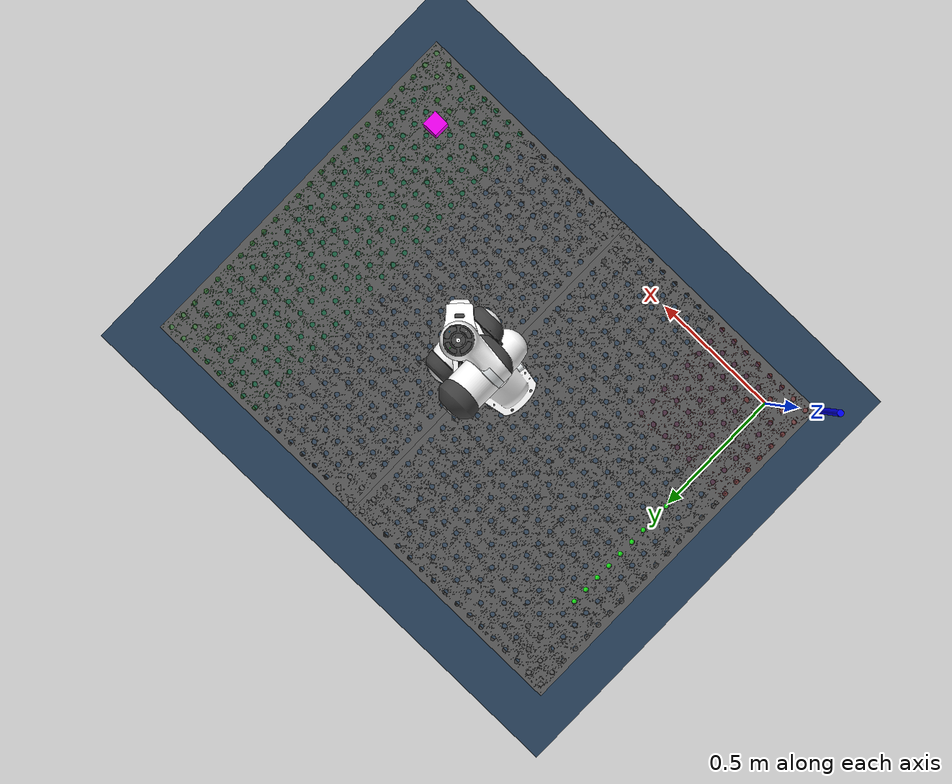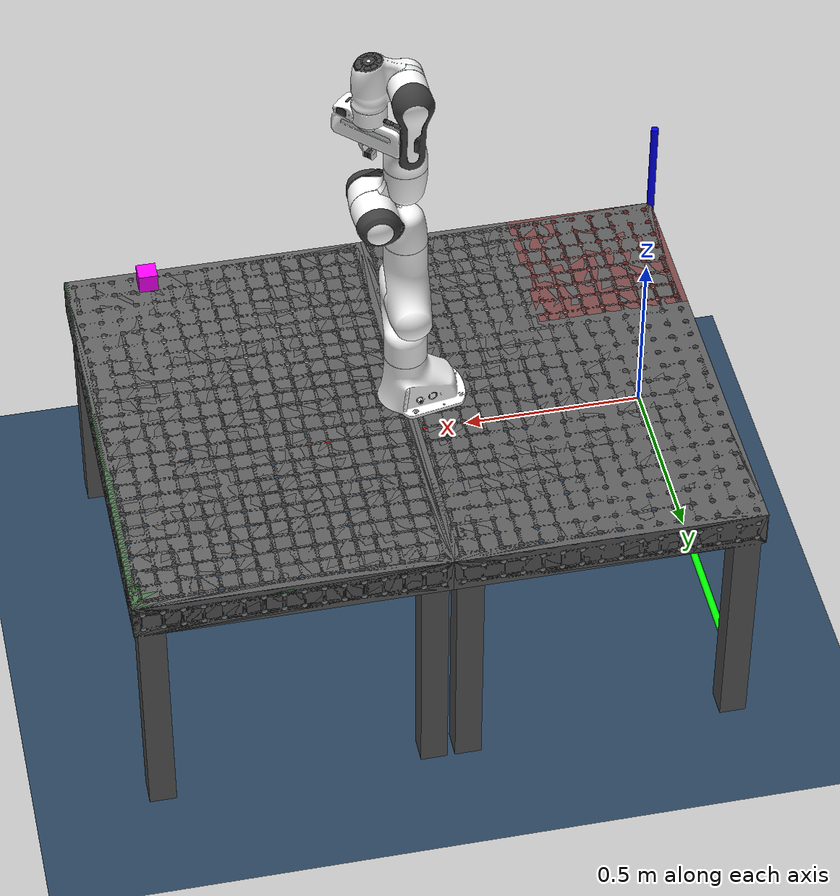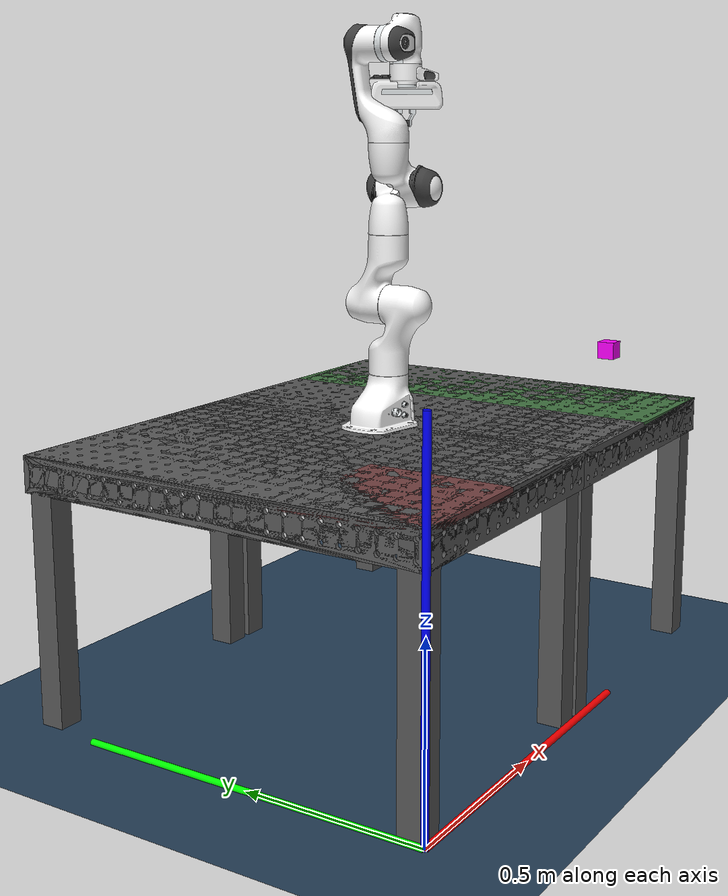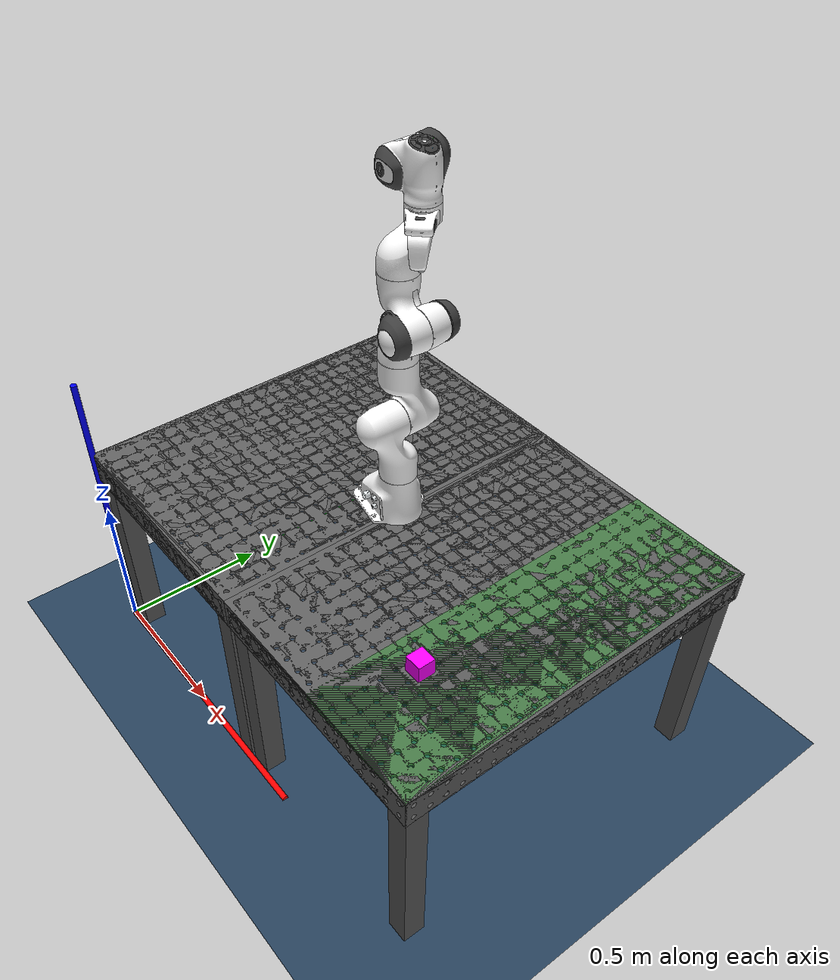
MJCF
<mujoco model="scene">

    <compiler angle="radian" autolimits="true" />
    <option timestep="0.002" integrator="implicitfast" solver="PGS" gravity="0 0 -9.82"
            cone="elliptic">
    </option>

    <include file="../franka_emika_panda/panda.xml" />

    <statistic center="0.3 0 0.3" extent="0.8" meansize="0.08" />

    <visual>
        <headlight diffuse="0.6 0.6 0.6" ambient="0.1 0.1 0.1" specular="0 0 0" />
        <rgba haze="0.15 0.25 0.35 1" />
        <global azimuth="120" elevation="-20" />
    </visual>

    <asset>
        <texture type="skybox" builtin="gradient" rgb1="0.3 0.5 0.7" rgb2="0 0 0" width="512"
                 height="3072" />
        <texture type="2d" name="groundplane" builtin="checker" mark="edge" rgb1="0.2 0.3 0.4"
                 rgb2="0.1 0.2 0.3" markrgb="0.8 0.8 0.8" width="300" height="300" />
        <material name="groundplane" texture="groundplane" texuniform="true" texrepeat="5 5"
                  reflectance="0.2" />

        <!--meshes-->
        <mesh name ="table" file="../table/sigmund_table.stl" scale= "1 1 1"/>
    </asset>

    <worldbody>
        <light pos="0 0 1.5" dir="0 0 -1" directional="true" />
		<geom name="floor" size="0 0 0.05" type="plane" material="groundplane" />
		<geom name="x-aixs" group="2" type="cylinder" contype="0" conaffinity="0"
			fromto="0 0 0 1 0 0" size="0.01" rgba="1 0 0 1" />
		<geom name="y-aixs" group="2" type="cylinder" contype="0" conaffinity="0"
			fromto="0 0 0 0 1 0" size="0.01" rgba="0 1 0 1" />
		<geom name="z-aixs" group="2" type="cylinder" contype="0" conaffinity="0"
			fromto="0 0 0 0 0 1" size="0.01" rgba="0 0 1 1" />

		<camera name="cam" pos="1.0 0.6 2.0" xyaxes="0 -1 0 1 0 0.5" mode="fixed" />

		<body name="mocap" mocap="true" pos="0.8 0.6 0.74">
			<geom name="mocap" type="sphere" size="0.000001"/>
		</body>

		<body name="Box" pos="1.4 0.2 0.9" quat="1 0 0 0">
			<joint name="Box" type="free" />
			<geom name="Box" type="box" size="0.025 0.025 0.025" rgba="1 0 1 1" condim="6"/>
		</body>

		<!--Zones-->
		<body name="zone_pickup" pos="1.4 0.6 0.73" quat="1 0 0 0">
			<geom name="zone_pickup" type="box" size="0.2 0.6 0.01" rgba="0 1 0 0.1" contype="0" conaffinity="0"/>
		</body>
		<body name="zone_drop" pos="0.2 0.2 0.73" quat="1 0 0 0">
			<geom name="zone_drop" type="box" size="0.2 0.2 0.01" rgba="1 0 0 0.1" contype="0" conaffinity="0"/>
		</body>

        <!--table -->
		<body name = "table1" euler="0 0 0" pos= "0.8 0 0.74" >
		  <geom name = "table1" type="mesh" mesh="table" group="2" rgba="0.35 0.35 0.35 1" mass="0" contype="0" conaffinity="0"/>
		</body>
		<body name = "table2" euler="0 0 0" pos= "1.6 0 0.74" >
		  <geom name = "table2" type="mesh" mesh="table" group="2" rgba="0.35 0.35 0.35 1" mass="0" contype="0" conaffinity="0"/>
		</body>

		<body name="simple_table" pos="0.8 0.6 0.69" quat="1 0 0 0">
			<geom name="simple_table" type="box" size="0.8 0.6 0.05" rgba="0.5 0.5 0.5 0.1"/>
		</body>
    </worldbody>

</mujoco>

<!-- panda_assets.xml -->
<mujocoinclude>

    <!-- 手爪相关网格 -->
    <mesh file="../franka_emika_panda/assets/finger_0.obj" />
    <mesh file="../franka_emika_panda/assets/finger_1.obj" />
    <mesh file="../franka_emika_panda/assets/hand_0.obj" />
    <mesh file="../franka_emika_panda/assets/hand_1.obj" />
    <mesh file="../franka_emika_panda/assets/hand_2.obj" />
    <mesh file="../franka_emika_panda/assets/hand_3.obj" />
    <mesh file="../franka_emika_panda/assets/hand_4.obj" />

    <!-- panda 链接体 -->
    <mesh file="../franka_emika_panda/assets/link0_0.obj" />
    <mesh file="../franka_emika_panda/assets/link0_1.obj" />
    <mesh file="../franka_emika_panda/assets/link0_2.obj" />
    <mesh file="../franka_emika_panda/assets/link0_3.obj" />
    <mesh file="../franka_emika_panda/assets/link0_4.obj" />
    <mesh file="../franka_emika_panda/assets/link0_5.obj" />
    <mesh file="../franka_emika_panda/assets/link0_7.obj" />
    <mesh file="../franka_emika_panda/assets/link0_8.obj" />
    <mesh file="../franka_emika_panda/assets/link0_9.obj" />
    <mesh file="../franka_emika_panda/assets/link0_10.obj" />
    <mesh file="../franka_emika_panda/assets/link0_11.obj" />

    <mesh file="../franka_emika_panda/assets/link1.obj" />
    <mesh file="../franka_emika_panda/assets/link2.obj" />

    <mesh file="../franka_emika_panda/assets/link3_0.obj" />
    <mesh file="../franka_emika_panda/assets/link3_1.obj" />
    <mesh file="../franka_emika_panda/assets/link3_2.obj" />
    <mesh file="../franka_emika_panda/assets/link3_3.obj" />

    <mesh file="../franka_emika_panda/assets/link4_0.obj" />
    <mesh file="../franka_emika_panda/assets/link4_1.obj" />
    <mesh file="../franka_emika_panda/assets/link4_2.obj" />
    <mesh file="../franka_emika_panda/assets/link4_3.obj" />

    <mesh file="../franka_emika_panda/assets/link5_0.obj" />
    <mesh file="../franka_emika_panda/assets/link5_1.obj" />
    <mesh file="../franka_emika_panda/assets/link5_2.obj" />
    <mesh file="../franka_emika_panda/assets/link5_collision_0.obj" />
    <mesh file="../franka_emika_panda/assets/link5_collision_1.obj" />
    <mesh file="../franka_emika_panda/assets/link5_collision_2.obj" />

    <mesh file="../franka_emika_panda/assets/link6_0.obj" />
    <mesh file="../franka_emika_panda/assets/link6_1.obj" />
    <mesh file="../franka_emika_panda/assets/link6_2.obj" />
    <mesh file="../franka_emika_panda/assets/link6_3.obj" />
    <mesh file="../franka_emika_panda/assets/link6_4.obj" />
    <mesh file="../franka_emika_panda/assets/link6_5.obj" />
    <mesh file="../franka_emika_panda/assets/link6_6.obj" />
    <mesh file="../franka_emika_panda/assets/link6_7.obj" />
    <mesh file="../franka_emika_panda/assets/link6_8.obj" />
    <mesh file="../franka_emika_panda/assets/link6_9.obj" />
    <mesh file="../franka_emika_panda/assets/link6_10.obj" />
    <mesh file="../franka_emika_panda/assets/link6_11.obj" />
    <mesh file="../franka_emika_panda/assets/link6_12.obj" />
    <mesh file="../franka_emika_panda/assets/link6_13.obj" />
    <mesh file="../franka_emika_panda/assets/link6_14.obj" />
    <mesh file="../franka_emika_panda/assets/link6_15.obj" />
    <mesh file="../franka_emika_panda/assets/link6_16.obj" />

    <mesh file="../franka_emika_panda/assets/link7_0.obj" />
    <mesh file="../franka_emika_panda/assets/link7_1.obj" />
    <mesh file="../franka_emika_panda/assets/link7_2.obj" />
    <mesh file="../franka_emika_panda/assets/link7_3.obj" />
    <mesh file="../franka_emika_panda/assets/link7_4.obj" />
    <mesh file="../franka_emika_panda/assets/link7_5.obj" />
    <mesh file="../franka_emika_panda/assets/link7_6.obj" />
    <mesh file="../franka_emika_panda/assets/link7_7.obj" />

    <mesh name="link0_c" file="../franka_emika_panda/assets/link0.stl"/>
    <mesh name="link1_c" file="../franka_emika_panda/assets/link1.stl"/>
    <mesh name="link2_c" file="../franka_emika_panda/assets/link2.stl"/>
    <mesh name="link3_c" file="../franka_emika_panda/assets/link3.stl"/>
    <mesh name="link4_c" file="../franka_emika_panda/assets/link4.stl"/>
    <mesh name="link5_c0" file="../franka_emika_panda/assets/link5_collision_0.obj"/>
    <mesh name="link5_c1" file="../franka_emika_panda/assets/link5_collision_1.obj"/>
    <mesh name="link5_c2" file="../franka_emika_panda/assets/link5_collision_2.obj"/>
    <mesh name="link6_c" file="../franka_emika_panda/assets/link6.stl"/>
    <mesh name="link7_c" file="../franka_emika_panda/assets/link7.stl"/>
    <mesh name="hand_c" file="../franka_emika_panda/assets/hand.stl"/>

</mujocoinclude>

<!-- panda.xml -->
<mujoco model="panda">

  <asset>
    <include file="../franka_emika_panda/panda_assets.xml"/>
  </asset>

  <default>
    <default class="panda">
      <material specular="0.5" shininess="0.25"/>
      <joint armature="0.1" damping="1" axis="0 0 1" range="-2.8973 2.8973"/>
      <general dyntype="none" biastype="affine" ctrlrange="-2.8973 2.8973" forcerange="-87 87"/>
      <default class="finger">
        <joint axis="0 1 0" type="slide" range="0 0.04"/>
      </default>

      <default class="visual">
        <geom type="mesh" contype="0" conaffinity="0" group="2"/>
      </default>
      <default class="collision">
        <geom type="mesh" group="3"/>
        <default class="fingertip_pad_collision_1">
          <geom type="box" size="0.0085 0.004 0.0085" pos="0 0.0055 0.0445"/>
        </default>
        <default class="fingertip_pad_collision_2">
          <geom type="box" size="0.003 0.002 0.003" pos="0.0055 0.002 0.05"/>
        </default>
        <default class="fingertip_pad_collision_3">
          <geom type="box" size="0.003 0.002 0.003" pos="-0.0055 0.002 0.05"/>
        </default>
        <default class="fingertip_pad_collision_4">
          <geom type="box" size="0.003 0.002 0.0035" pos="0.0055 0.002 0.0395"/>
        </default>
        <default class="fingertip_pad_collision_5">
          <geom type="box" size="0.003 0.002 0.0035" pos="-0.0055 0.002 0.0395"/>
        </default>
      </default>
    </default>
  </default>

  <asset>
    <material class="panda" name="white" rgba="1 1 1 1"/>
    <material class="panda" name="off_white" rgba="0.901961 0.921569 0.929412 1"/>
    <material class="panda" name="black" rgba="0.25 0.25 0.25 1"/>
    <material class="panda" name="green" rgba="0 1 0 1"/>
    <material class="panda" name="light_blue" rgba="0.039216 0.541176 0.780392 1"/>

    <!-- Collision meshes -->

    <!-- Visual meshes -->
  </asset>

  <worldbody>
    <light name="top" pos="0 0 2" mode="trackcom"/>
    <body name="link0" pos="0.8 0.6 0.745" quat="1 0 0 0" childclass="panda">
      <inertial mass="0.629769" pos="-0.041018 -0.00014 0.049974"
        fullinertia="0.00315 0.00388 0.004285 8.2904e-7 0.00015 8.2299e-6"/>
      <geom mesh="link0_0" material="off_white" class="visual"/>
      <geom mesh="link0_1" material="black" class="visual"/>
      <geom mesh="link0_2" material="off_white" class="visual"/>
      <geom mesh="link0_3" material="black" class="visual"/>
      <geom mesh="link0_4" material="off_white" class="visual"/>
      <geom mesh="link0_5" material="black" class="visual"/>
      <geom mesh="link0_7" material="white" class="visual"/>
      <geom mesh="link0_8" material="white" class="visual"/>
      <geom mesh="link0_9" material="black" class="visual"/>
      <geom mesh="link0_10" material="off_white" class="visual"/>
      <geom mesh="link0_11" material="white" class="visual"/>
      <geom mesh="link0_c" class="collision"/>
      <body name="link1" pos="0 0 0.333">
        <inertial mass="4.970684" pos="0.003875 0.002081 -0.04762"
          fullinertia="0.70337 0.70661 0.0091170 -0.00013900 0.0067720 0.019169"/>
        <joint name="joint1"/>
        <geom material="white" mesh="link1" class="visual"/>
        <geom mesh="link1_c" class="collision"/>
        <body name="link2" quat="1 -1 0 0">
          <inertial mass="0.646926" pos="-0.003141 -0.02872 0.003495"
            fullinertia="0.0079620 2.8110e-2 2.5995e-2 -3.925e-3 1.0254e-2 7.04e-4"/>
          <joint name="joint2" range="-1.7628 1.7628"/>
          <geom material="white" mesh="link2" class="visual"/>
          <geom mesh="link2_c" class="collision"/>
          <body name="link3" pos="0 -0.316 0" quat="1 1 0 0">
            <joint name="joint3"/>
            <inertial mass="3.228604" pos="2.7518e-2 3.9252e-2 -6.6502e-2"
              fullinertia="3.7242e-2 3.6155e-2 1.083e-2 -4.761e-3 -1.1396e-2 -1.2805e-2"/>
            <geom mesh="link3_0" material="white" class="visual"/>
            <geom mesh="link3_1" material="white" class="visual"/>
            <geom mesh="link3_2" material="white" class="visual"/>
            <geom mesh="link3_3" material="black" class="visual"/>
            <geom mesh="link3_c" class="collision"/>
            <body name="link4" pos="0.0825 0 0" quat="1 1 0 0">
              <inertial mass="3.587895" pos="-5.317e-2 1.04419e-1 2.7454e-2"
                fullinertia="2.5853e-2 1.9552e-2 2.8323e-2 7.796e-3 -1.332e-3 8.641e-3"/>
              <joint name="joint4" range="-3.0718 -0.0698"/>
              <geom mesh="link4_0" material="white" class="visual"/>
              <geom mesh="link4_1" material="white" class="visual"/>
              <geom mesh="link4_2" material="black" class="visual"/>
              <geom mesh="link4_3" material="white" class="visual"/>
              <geom mesh="link4_c" class="collision"/>
              <body name="link5" pos="-0.0825 0.384 0" quat="1 -1 0 0">
                <inertial mass="1.225946" pos="-1.1953e-2 4.1065e-2 -3.8437e-2"
                  fullinertia="3.5549e-2 2.9474e-2 8.627e-3 -2.117e-3 -4.037e-3 2.29e-4"/>
                <joint name="joint5"/>
                <geom mesh="link5_0" material="black" class="visual"/>
                <geom mesh="link5_1" material="white" class="visual"/>
                <geom mesh="link5_2" material="white" class="visual"/>
                <geom mesh="link5_c0" class="collision"/>
                <geom mesh="link5_c1" class="collision"/>
                <geom mesh="link5_c2" class="collision"/>
                <body name="link6" quat="1 1 0 0">
                  <inertial mass="1.666555" pos="6.0149e-2 -1.4117e-2 -1.0517e-2"
                    fullinertia="1.964e-3 4.354e-3 5.433e-3 1.09e-4 -1.158e-3 3.41e-4"/>
                  <joint name="joint6" range="-0.0175 3.7525"/>
                  <geom mesh="link6_0" material="off_white" class="visual"/>
                  <geom mesh="link6_1" material="white" class="visual"/>
                  <geom mesh="link6_2" material="black" class="visual"/>
                  <geom mesh="link6_3" material="white" class="visual"/>
                  <geom mesh="link6_4" material="white" class="visual"/>
                  <geom mesh="link6_5" material="white" class="visual"/>
                  <geom mesh="link6_6" material="white" class="visual"/>
                  <geom mesh="link6_7" material="light_blue" class="visual"/>
                  <geom mesh="link6_8" material="light_blue" class="visual"/>
                  <geom mesh="link6_9" material="black" class="visual"/>
                  <geom mesh="link6_10" material="black" class="visual"/>
                  <geom mesh="link6_11" material="white" class="visual"/>
                  <geom mesh="link6_12" material="green" class="visual"/>
                  <geom mesh="link6_13" material="white" class="visual"/>
                  <geom mesh="link6_14" material="black" class="visual"/>
                  <geom mesh="link6_15" material="black" class="visual"/>
                  <geom mesh="link6_16" material="white" class="visual"/>
                  <geom mesh="link6_c" class="collision"/>
                  <body name="link7" pos="0.088 0 0" quat="1 1 0 0">
                    <inertial mass="7.35522e-01" pos="1.0517e-2 -4.252e-3 6.1597e-2"
                      fullinertia="1.2516e-2 1.0027e-2 4.815e-3 -4.28e-4 -1.196e-3 -7.41e-4"/>
                    <joint name="joint7"/>
                    <geom mesh="link7_0" material="white" class="visual"/>
                    <geom mesh="link7_1" material="black" class="visual"/>
                    <geom mesh="link7_2" material="black" class="visual"/>
                    <geom mesh="link7_3" material="black" class="visual"/>
                    <geom mesh="link7_4" material="black" class="visual"/>
                    <geom mesh="link7_5" material="black" class="visual"/>
                    <geom mesh="link7_6" material="black" class="visual"/>
                    <geom mesh="link7_7" material="white" class="visual"/>
                    <geom mesh="link7_c" class="collision"/>
                    <body name="hand" pos="0 0 0.107" quat="0.9238795 0 0 -0.3826834">
                      <inertial mass="0.73" pos="-0.01 0 0.03" diaginertia="0.001 0.0025 0.0017"/>
                      <geom mesh="hand_0" material="off_white" class="visual"/>
                      <geom mesh="hand_1" material="black" class="visual"/>
                      <geom mesh="hand_2" material="black" class="visual"/>
                      <geom mesh="hand_3" material="white" class="visual"/>
                      <geom mesh="hand_4" material="off_white" class="visual"/>
                      <geom mesh="hand_c" class="collision"/>
                      <body name="left_finger" pos="0 0 0.0584">
                        <inertial mass="0.015" pos="0 0 0" diaginertia="2.375e-6 2.375e-6 7.5e-7"/>
                        <joint name="finger_joint1" class="finger"/>
                        <geom mesh="finger_0" material="off_white" class="visual"/>
                        <geom mesh="finger_1" material="black" class="visual"/>
                        <geom mesh="finger_0" class="collision"/>
                        <geom class="fingertip_pad_collision_1"/>
                        <geom class="fingertip_pad_collision_2"/>
                        <geom class="fingertip_pad_collision_3"/>
                        <geom class="fingertip_pad_collision_4"/>
                        <geom class="fingertip_pad_collision_5"/>
                      </body>
                      <body name="right_finger" pos="0 0 0.0584" quat="0 0 0 1">
                        <inertial mass="0.015" pos="0 0 0" diaginertia="2.375e-6 2.375e-6 7.5e-7"/>
                        <joint name="finger_joint2" class="finger"/>
                        <geom mesh="finger_0" material="off_white" class="visual"/>
                        <geom mesh="finger_1" material="black" class="visual"/>
                        <geom mesh="finger_0" class="collision"/>
                        <geom class="fingertip_pad_collision_1"/>
                        <geom class="fingertip_pad_collision_2"/>
                        <geom class="fingertip_pad_collision_3"/>
                        <geom class="fingertip_pad_collision_4"/>
                        <geom class="fingertip_pad_collision_5"/>
                      </body>
                    </body>
                  </body>
                </body>
              </body>
            </body>
          </body>
        </body>
      </body>
    </body>
  </worldbody>

  <tendon>
    <fixed name="split">
      <joint joint="finger_joint1" coef="0.5"/>
      <joint joint="finger_joint2" coef="0.5"/>
    </fixed>
  </tendon>

  <equality>
    <joint joint1="finger_joint1" joint2="finger_joint2" solimp="0.95 0.99 0.001" solref="0.005 1"/>
  </equality>

  <actuator>
    <general class="panda" name="actuator1" joint="joint1" gainprm="4500" biasprm="0 -4500 -450"/>
    <general class="panda" name="actuator2" joint="joint2" gainprm="4500" biasprm="0 -4500 -450"
      ctrlrange="-1.7628 1.7628"/>
    <general class="panda" name="actuator3" joint="joint3" gainprm="3500" biasprm="0 -3500 -350"/>
    <general class="panda" name="actuator4" joint="joint4" gainprm="3500" biasprm="0 -3500 -350"
      ctrlrange="-3.0718 -0.0698"/>
    <general class="panda" name="actuator5" joint="joint5" gainprm="2000" biasprm="0 -2000 -200" forcerange="-12 12"/>
    <general class="panda" name="actuator6" joint="joint6" gainprm="2000" biasprm="0 -2000 -200" forcerange="-12 12"
      ctrlrange="-0.0175 3.7525"/>
    <general class="panda" name="actuator7" joint="joint7" gainprm="2000" biasprm="0 -2000 -200" forcerange="-12 12"/>
    <!-- Remap original ctrlrange (0, 0.04) to (0, 255): 0.04 * 100 / 255 = 0.01568627451 -->
    <general class="panda" name="actuator8" tendon="split" forcerange="-100 100" ctrlrange="0 255"
      gainprm="0.01568627451 0 0" biasprm="0 -100 -10"/>
  </actuator>

  <contact>
    <exclude body1="link0" body2="link1"/>
  </contact>
</mujoco>
